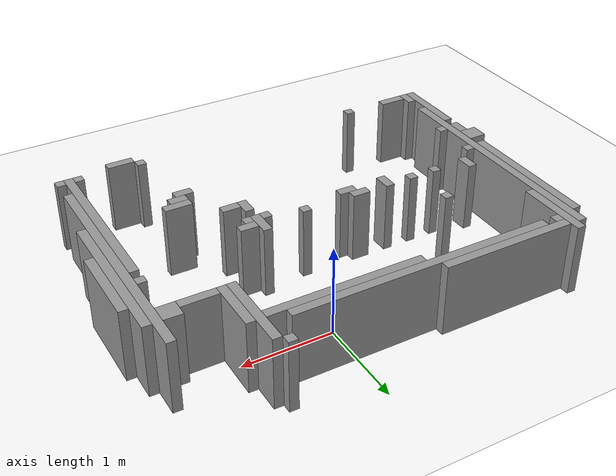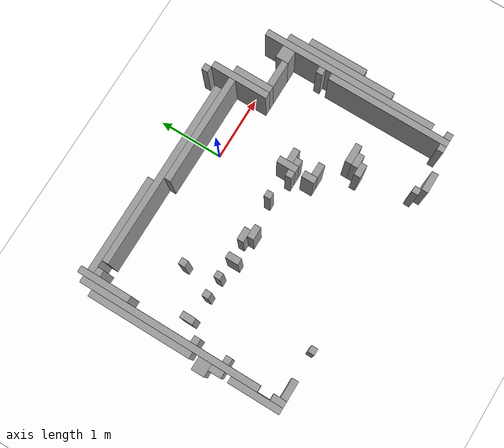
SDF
<?xml version="1.0"?>
<sdf version="1.6">
  <model name="map_walls">
    <static>true</static>
    <link name="walls">
      <collision name="collision_0">
        <pose>0.8400 0.7000 0.4000 0 0 0</pose>
        <geometry>
          <box><size>0.1000 0.1000 0.8</size></box>
        </geometry>
      </collision>
      <collision name="collision_1">
        <pose>-2.4600 0.2500 0.4000 0 0 0</pose>
        <geometry>
          <box><size>0.1000 0.8000 0.8</size></box>
        </geometry>
      </collision>
      <collision name="collision_2">
        <pose>0.9400 0.2000 0.4000 0 0 0</pose>
        <geometry>
          <box><size>0.1000 0.9000 0.8</size></box>
        </geometry>
      </collision>
      <collision name="collision_3">
        <pose>-2.5600 -0.8500 0.4000 0 0 0</pose>
        <geometry>
          <box><size>0.1000 2.8000 0.8</size></box>
        </geometry>
      </collision>
      <collision name="collision_4">
        <pose>-1.6600 0.5000 0.4000 0 0 0</pose>
        <geometry>
          <box><size>1.5000 0.1000 0.8</size></box>
        </geometry>
      </collision>
      <collision name="collision_5">
        <pose>-2.3600 0.4000 0.4000 0 0 0</pose>
        <geometry>
          <box><size>0.1000 0.1000 0.8</size></box>
        </geometry>
      </collision>
      <collision name="collision_6">
        <pose>-0.7600 0.4000 0.4000 0 0 0</pose>
        <geometry>
          <box><size>2.9000 0.1000 0.8</size></box>
        </geometry>
      </collision>
      <collision name="collision_7">
        <pose>-2.6600 -0.4500 0.4000 0 0 0</pose>
        <geometry>
          <box><size>0.1000 1.6000 0.8</size></box>
        </geometry>
      </collision>
      <collision name="collision_8">
        <pose>0.0400 0.3000 0.4000 0 0 0</pose>
        <geometry>
          <box><size>1.7000 0.1000 0.8</size></box>
        </geometry>
      </collision>
      <collision name="collision_9">
        <pose>1.0400 0.0500 0.4000 0 0 0</pose>
        <geometry>
          <box><size>0.1000 0.6000 0.8</size></box>
        </geometry>
      </collision>
      <collision name="collision_10">
        <pose>1.7400 -1.1000 0.4000 0 0 0</pose>
        <geometry>
          <box><size>0.1000 2.7000 0.8</size></box>
        </geometry>
      </collision>
      <collision name="collision_11">
        <pose>1.5900 -0.1500 0.4000 0 0 0</pose>
        <geometry>
          <box><size>0.2000 0.2000 0.8</size></box>
        </geometry>
      </collision>
      <collision name="collision_12">
        <pose>1.8400 -0.9000 0.4000 0 0 0</pose>
        <geometry>
          <box><size>0.1000 1.7000 0.8</size></box>
        </geometry>
      </collision>
      <collision name="collision_13">
        <pose>1.2900 -0.2000 0.4000 0 0 0</pose>
        <geometry>
          <box><size>0.4000 0.1000 0.8</size></box>
        </geometry>
      </collision>
      <collision name="collision_14">
        <pose>1.9400 -0.8000 0.4000 0 0 0</pose>
        <geometry>
          <box><size>0.1000 0.9000 0.8</size></box>
        </geometry>
      </collision>
      <collision name="collision_15">
        <pose>-1.6600 -0.5000 0.4000 0 0 0</pose>
        <geometry>
          <box><size>0.1000 0.1000 0.8</size></box>
        </geometry>
      </collision>
      <collision name="collision_16">
        <pose>1.6400 -0.7000 0.4000 0 0 0</pose>
        <geometry>
          <box><size>0.1000 0.1000 0.8</size></box>
        </geometry>
      </collision>
      <collision name="collision_17">
        <pose>-2.2600 -0.9500 0.4000 0 0 0</pose>
        <geometry>
          <box><size>0.1000 0.2000 0.8</size></box>
        </geometry>
      </collision>
      <collision name="collision_18">
        <pose>0.2400 -1.0000 0.4000 0 0 0</pose>
        <geometry>
          <box><size>0.1000 0.3000 0.8</size></box>
        </geometry>
      </collision>
      <collision name="collision_19">
        <pose>1.6400 -1.8000 0.4000 0 0 0</pose>
        <geometry>
          <box><size>0.1000 1.9000 0.8</size></box>
        </geometry>
      </collision>
      <collision name="collision_20">
        <pose>-1.8600 -1.0000 0.4000 0 0 0</pose>
        <geometry>
          <box><size>0.1000 0.1000 0.8</size></box>
        </geometry>
      </collision>
      <collision name="collision_21">
        <pose>-1.5600 -1.0000 0.4000 0 0 0</pose>
        <geometry>
          <box><size>0.1000 0.1000 0.8</size></box>
        </geometry>
      </collision>
      <collision name="collision_22">
        <pose>-1.2600 -1.0500 0.4000 0 0 0</pose>
        <geometry>
          <box><size>0.1000 0.2000 0.8</size></box>
        </geometry>
      </collision>
      <collision name="collision_23">
        <pose>-0.9100 -1.0000 0.4000 0 0 0</pose>
        <geometry>
          <box><size>0.2000 0.1000 0.8</size></box>
        </geometry>
      </collision>
      <collision name="collision_24">
        <pose>-0.2600 -1.0000 0.4000 0 0 0</pose>
        <geometry>
          <box><size>0.1000 0.1000 0.8</size></box>
        </geometry>
      </collision>
      <collision name="collision_25">
        <pose>0.3900 -1.0000 0.4000 0 0 0</pose>
        <geometry>
          <box><size>0.2000 0.1000 0.8</size></box>
        </geometry>
      </collision>
      <collision name="collision_26">
        <pose>-0.8100 -1.1000 0.4000 0 0 0</pose>
        <geometry>
          <box><size>0.2000 0.1000 0.8</size></box>
        </geometry>
      </collision>
      <collision name="collision_27">
        <pose>0.1400 -1.1000 0.4000 0 0 0</pose>
        <geometry>
          <box><size>0.1000 0.1000 0.8</size></box>
        </geometry>
      </collision>
      <collision name="collision_28">
        <pose>0.3400 -1.1000 0.4000 0 0 0</pose>
        <geometry>
          <box><size>0.1000 0.1000 0.8</size></box>
        </geometry>
      </collision>
      <collision name="collision_29">
        <pose>-2.4600 -1.2000 0.4000 0 0 0</pose>
        <geometry>
          <box><size>0.1000 0.1000 0.8</size></box>
        </geometry>
      </collision>
      <collision name="collision_30">
        <pose>0.2400 -1.3500 0.4000 0 0 0</pose>
        <geometry>
          <box><size>0.1000 0.2000 0.8</size></box>
        </geometry>
      </collision>
      <collision name="collision_31">
        <pose>-2.7100 -1.4500 0.4000 0 0 0</pose>
        <geometry>
          <box><size>0.2000 0.2000 0.8</size></box>
        </geometry>
      </collision>
      <collision name="collision_32">
        <pose>0.3900 -1.4000 0.4000 0 0 0</pose>
        <geometry>
          <box><size>0.2000 0.1000 0.8</size></box>
        </geometry>
      </collision>
      <collision name="collision_33">
        <pose>-2.6600 -1.6500 0.4000 0 0 0</pose>
        <geometry>
          <box><size>0.1000 0.2000 0.8</size></box>
        </geometry>
      </collision>
      <collision name="collision_34">
        <pose>-2.4600 -1.7000 0.4000 0 0 0</pose>
        <geometry>
          <box><size>0.1000 0.1000 0.8</size></box>
        </geometry>
      </collision>
      <collision name="collision_35">
        <pose>0.8400 -1.7000 0.4000 0 0 0</pose>
        <geometry>
          <box><size>0.3000 0.1000 0.8</size></box>
        </geometry>
      </collision>
      <collision name="collision_36">
        <pose>0.7900 -1.8000 0.4000 0 0 0</pose>
        <geometry>
          <box><size>0.2000 0.1000 0.8</size></box>
        </geometry>
      </collision>
      <collision name="collision_37">
        <pose>-2.6600 -2.2500 0.4000 0 0 0</pose>
        <geometry>
          <box><size>0.1000 0.8000 0.8</size></box>
        </geometry>
      </collision>
      <collision name="collision_38">
        <pose>0.6900 -1.9000 0.4000 0 0 0</pose>
        <geometry>
          <box><size>0.2000 0.1000 0.8</size></box>
        </geometry>
      </collision>
      <collision name="collision_39">
        <pose>-2.5600 -2.5500 0.4000 0 0 0</pose>
        <geometry>
          <box><size>0.1000 0.2000 0.8</size></box>
        </geometry>
      </collision>
      <collision name="collision_40">
        <pose>-2.3600 -2.6000 0.4000 0 0 0</pose>
        <geometry>
          <box><size>0.3000 0.1000 0.8</size></box>
        </geometry>
      </collision>
      <collision name="collision_41">
        <pose>-1.7600 -2.6000 0.4000 0 0 0</pose>
        <geometry>
          <box><size>0.1000 0.1000 0.8</size></box>
        </geometry>
      </collision>
      <collision name="collision_42">
        <pose>0.8400 -2.7000 0.4000 0 0 0</pose>
        <geometry>
          <box><size>0.1000 0.1000 0.8</size></box>
        </geometry>
      </collision>
      <collision name="collision_43">
        <pose>1.5400 -2.7000 0.4000 0 0 0</pose>
        <geometry>
          <box><size>0.1000 0.1000 0.8</size></box>
        </geometry>
      </collision>
      <collision name="collision_44">
        <pose>1.7400 -2.7000 0.4000 0 0 0</pose>
        <geometry>
          <box><size>0.1000 0.1000 0.8</size></box>
        </geometry>
      </collision>
      <collision name="collision_45">
        <pose>1.0400 -2.8000 0.4000 0 0 0</pose>
        <geometry>
          <box><size>0.3000 0.1000 0.8</size></box>
        </geometry>
      </collision>
      <visual name="visual_0">
        <pose>0.8400 0.7000 0.4000 0 0 0</pose>
        <geometry>
          <box><size>0.1000 0.1000 0.8</size></box>
        </geometry>
        <material>
          <ambient>0.5 0.5 0.5 1</ambient>
          <diffuse>0.6 0.6 0.6 1</diffuse>
        </material>
      </visual>
      <visual name="visual_1">
        <pose>-2.4600 0.2500 0.4000 0 0 0</pose>
        <geometry>
          <box><size>0.1000 0.8000 0.8</size></box>
        </geometry>
        <material>
          <ambient>0.5 0.5 0.5 1</ambient>
          <diffuse>0.6 0.6 0.6 1</diffuse>
        </material>
      </visual>
      <visual name="visual_2">
        <pose>0.9400 0.2000 0.4000 0 0 0</pose>
        <geometry>
          <box><size>0.1000 0.9000 0.8</size></box>
        </geometry>
        <material>
          <ambient>0.5 0.5 0.5 1</ambient>
          <diffuse>0.6 0.6 0.6 1</diffuse>
        </material>
      </visual>
      <visual name="visual_3">
        <pose>-2.5600 -0.8500 0.4000 0 0 0</pose>
        <geometry>
          <box><size>0.1000 2.8000 0.8</size></box>
        </geometry>
        <material>
          <ambient>0.5 0.5 0.5 1</ambient>
          <diffuse>0.6 0.6 0.6 1</diffuse>
        </material>
      </visual>
      <visual name="visual_4">
        <pose>-1.6600 0.5000 0.4000 0 0 0</pose>
        <geometry>
          <box><size>1.5000 0.1000 0.8</size></box>
        </geometry>
        <material>
          <ambient>0.5 0.5 0.5 1</ambient>
          <diffuse>0.6 0.6 0.6 1</diffuse>
        </material>
      </visual>
      <visual name="visual_5">
        <pose>-2.3600 0.4000 0.4000 0 0 0</pose>
        <geometry>
          <box><size>0.1000 0.1000 0.8</size></box>
        </geometry>
        <material>
          <ambient>0.5 0.5 0.5 1</ambient>
          <diffuse>0.6 0.6 0.6 1</diffuse>
        </material>
      </visual>
      <visual name="visual_6">
        <pose>-0.7600 0.4000 0.4000 0 0 0</pose>
        <geometry>
          <box><size>2.9000 0.1000 0.8</size></box>
        </geometry>
        <material>
          <ambient>0.5 0.5 0.5 1</ambient>
          <diffuse>0.6 0.6 0.6 1</diffuse>
        </material>
      </visual>
      <visual name="visual_7">
        <pose>-2.6600 -0.4500 0.4000 0 0 0</pose>
        <geometry>
          <box><size>0.1000 1.6000 0.8</size></box>
        </geometry>
        <material>
          <ambient>0.5 0.5 0.5 1</ambient>
          <diffuse>0.6 0.6 0.6 1</diffuse>
        </material>
      </visual>
      <visual name="visual_8">
        <pose>0.0400 0.3000 0.4000 0 0 0</pose>
        <geometry>
          <box><size>1.7000 0.1000 0.8</size></box>
        </geometry>
        <material>
          <ambient>0.5 0.5 0.5 1</ambient>
          <diffuse>0.6 0.6 0.6 1</diffuse>
        </material>
      </visual>
      <visual name="visual_9">
        <pose>1.0400 0.0500 0.4000 0 0 0</pose>
        <geometry>
          <box><size>0.1000 0.6000 0.8</size></box>
        </geometry>
        <material>
          <ambient>0.5 0.5 0.5 1</ambient>
          <diffuse>0.6 0.6 0.6 1</diffuse>
        </material>
      </visual>
      <visual name="visual_10">
        <pose>1.7400 -1.1000 0.4000 0 0 0</pose>
        <geometry>
          <box><size>0.1000 2.7000 0.8</size></box>
        </geometry>
        <material>
          <ambient>0.5 0.5 0.5 1</ambient>
          <diffuse>0.6 0.6 0.6 1</diffuse>
        </material>
      </visual>
      <visual name="visual_11">
        <pose>1.5900 -0.1500 0.4000 0 0 0</pose>
        <geometry>
          <box><size>0.2000 0.2000 0.8</size></box>
        </geometry>
        <material>
          <ambient>0.5 0.5 0.5 1</ambient>
          <diffuse>0.6 0.6 0.6 1</diffuse>
        </material>
      </visual>
      <visual name="visual_12">
        <pose>1.8400 -0.9000 0.4000 0 0 0</pose>
        <geometry>
          <box><size>0.1000 1.7000 0.8</size></box>
        </geometry>
        <material>
          <ambient>0.5 0.5 0.5 1</ambient>
          <diffuse>0.6 0.6 0.6 1</diffuse>
        </material>
      </visual>
      <visual name="visual_13">
        <pose>1.2900 -0.2000 0.4000 0 0 0</pose>
        <geometry>
          <box><size>0.4000 0.1000 0.8</size></box>
        </geometry>
        <material>
          <ambient>0.5 0.5 0.5 1</ambient>
          <diffuse>0.6 0.6 0.6 1</diffuse>
        </material>
      </visual>
      <visual name="visual_14">
        <pose>1.9400 -0.8000 0.4000 0 0 0</pose>
        <geometry>
          <box><size>0.1000 0.9000 0.8</size></box>
        </geometry>
        <material>
          <ambient>0.5 0.5 0.5 1</ambient>
          <diffuse>0.6 0.6 0.6 1</diffuse>
        </material>
      </visual>
      <visual name="visual_15">
        <pose>-1.6600 -0.5000 0.4000 0 0 0</pose>
        <geometry>
          <box><size>0.1000 0.1000 0.8</size></box>
        </geometry>
        <material>
          <ambient>0.5 0.5 0.5 1</ambient>
          <diffuse>0.6 0.6 0.6 1</diffuse>
        </material>
      </visual>
      <visual name="visual_16">
        <pose>1.6400 -0.7000 0.4000 0 0 0</pose>
        <geometry>
          <box><size>0.1000 0.1000 0.8</size></box>
        </geometry>
        <material>
          <ambient>0.5 0.5 0.5 1</ambient>
          <diffuse>0.6 0.6 0.6 1</diffuse>
        </material>
      </visual>
      <visual name="visual_17">
        <pose>-2.2600 -0.9500 0.4000 0 0 0</pose>
        <geometry>
          <box><size>0.1000 0.2000 0.8</size></box>
        </geometry>
        <material>
          <ambient>0.5 0.5 0.5 1</ambient>
          <diffuse>0.6 0.6 0.6 1</diffuse>
        </material>
      </visual>
      <visual name="visual_18">
        <pose>0.2400 -1.0000 0.4000 0 0 0</pose>
        <geometry>
          <box><size>0.1000 0.3000 0.8</size></box>
        </geometry>
        <material>
          <ambient>0.5 0.5 0.5 1</ambient>
          <diffuse>0.6 0.6 0.6 1</diffuse>
        </material>
      </visual>
      <visual name="visual_19">
        <pose>1.6400 -1.8000 0.4000 0 0 0</pose>
        <geometry>
          <box><size>0.1000 1.9000 0.8</size></box>
        </geometry>
        <material>
          <ambient>0.5 0.5 0.5 1</ambient>
          <diffuse>0.6 0.6 0.6 1</diffuse>
        </material>
      </visual>
      <visual name="visual_20">
        <pose>-1.8600 -1.0000 0.4000 0 0 0</pose>
        <geometry>
          <box><size>0.1000 0.1000 0.8</size></box>
        </geometry>
        <material>
          <ambient>0.5 0.5 0.5 1</ambient>
          <diffuse>0.6 0.6 0.6 1</diffuse>
        </material>
      </visual>
      <visual name="visual_21">
        <pose>-1.5600 -1.0000 0.4000 0 0 0</pose>
        <geometry>
          <box><size>0.1000 0.1000 0.8</size></box>
        </geometry>
        <material>
          <ambient>0.5 0.5 0.5 1</ambient>
          <diffuse>0.6 0.6 0.6 1</diffuse>
        </material>
      </visual>
      <visual name="visual_22">
        <pose>-1.2600 -1.0500 0.4000 0 0 0</pose>
        <geometry>
          <box><size>0.1000 0.2000 0.8</size></box>
        </geometry>
        <material>
          <ambient>0.5 0.5 0.5 1</ambient>
          <diffuse>0.6 0.6 0.6 1</diffuse>
        </material>
      </visual>
      <visual name="visual_23">
        <pose>-0.9100 -1.0000 0.4000 0 0 0</pose>
        <geometry>
          <box><size>0.2000 0.1000 0.8</size></box>
        </geometry>
        <material>
          <ambient>0.5 0.5 0.5 1</ambient>
          <diffuse>0.6 0.6 0.6 1</diffuse>
        </material>
      </visual>
      <visual name="visual_24">
        <pose>-0.2600 -1.0000 0.4000 0 0 0</pose>
        <geometry>
          <box><size>0.1000 0.1000 0.8</size></box>
        </geometry>
        <material>
          <ambient>0.5 0.5 0.5 1</ambient>
          <diffuse>0.6 0.6 0.6 1</diffuse>
        </material>
      </visual>
      <visual name="visual_25">
        <pose>0.3900 -1.0000 0.4000 0 0 0</pose>
        <geometry>
          <box><size>0.2000 0.1000 0.8</size></box>
        </geometry>
        <material>
          <ambient>0.5 0.5 0.5 1</ambient>
          <diffuse>0.6 0.6 0.6 1</diffuse>
        </material>
      </visual>
      <visual name="visual_26">
        <pose>-0.8100 -1.1000 0.4000 0 0 0</pose>
        <geometry>
          <box><size>0.2000 0.1000 0.8</size></box>
        </geometry>
        <material>
          <ambient>0.5 0.5 0.5 1</ambient>
          <diffuse>0.6 0.6 0.6 1</diffuse>
        </material>
      </visual>
      <visual name="visual_27">
        <pose>0.1400 -1.1000 0.4000 0 0 0</pose>
        <geometry>
          <box><size>0.1000 0.1000 0.8</size></box>
        </geometry>
        <material>
          <ambient>0.5 0.5 0.5 1</ambient>
          <diffuse>0.6 0.6 0.6 1</diffuse>
        </material>
      </visual>
      <visual name="visual_28">
        <pose>0.3400 -1.1000 0.4000 0 0 0</pose>
        <geometry>
          <box><size>0.1000 0.1000 0.8</size></box>
        </geometry>
        <material>
          <ambient>0.5 0.5 0.5 1</ambient>
          <diffuse>0.6 0.6 0.6 1</diffuse>
        </material>
      </visual>
      <visual name="visual_29">
        <pose>-2.4600 -1.2000 0.4000 0 0 0</pose>
        <geometry>
          <box><size>0.1000 0.1000 0.8</size></box>
        </geometry>
        <material>
          <ambient>0.5 0.5 0.5 1</ambient>
          <diffuse>0.6 0.6 0.6 1</diffuse>
        </material>
      </visual>
      <visual name="visual_30">
        <pose>0.2400 -1.3500 0.4000 0 0 0</pose>
        <geometry>
          <box><size>0.1000 0.2000 0.8</size></box>
        </geometry>
        <material>
          <ambient>0.5 0.5 0.5 1</ambient>
          <diffuse>0.6 0.6 0.6 1</diffuse>
        </material>
      </visual>
      <visual name="visual_31">
        <pose>-2.7100 -1.4500 0.4000 0 0 0</pose>
        <geometry>
          <box><size>0.2000 0.2000 0.8</size></box>
        </geometry>
        <material>
          <ambient>0.5 0.5 0.5 1</ambient>
          <diffuse>0.6 0.6 0.6 1</diffuse>
        </material>
      </visual>
      <visual name="visual_32">
        <pose>0.3900 -1.4000 0.4000 0 0 0</pose>
        <geometry>
          <box><size>0.2000 0.1000 0.8</size></box>
        </geometry>
        <material>
          <ambient>0.5 0.5 0.5 1</ambient>
          <diffuse>0.6 0.6 0.6 1</diffuse>
        </material>
      </visual>
      <visual name="visual_33">
        <pose>-2.6600 -1.6500 0.4000 0 0 0</pose>
        <geometry>
          <box><size>0.1000 0.2000 0.8</size></box>
        </geometry>
        <material>
          <ambient>0.5 0.5 0.5 1</ambient>
          <diffuse>0.6 0.6 0.6 1</diffuse>
        </material>
      </visual>
      <visual name="visual_34">
        <pose>-2.4600 -1.7000 0.4000 0 0 0</pose>
        <geometry>
          <box><size>0.1000 0.1000 0.8</size></box>
        </geometry>
        <material>
          <ambient>0.5 0.5 0.5 1</ambient>
          <diffuse>0.6 0.6 0.6 1</diffuse>
        </material>
      </visual>
      <visual name="visual_35">
        <pose>0.8400 -1.7000 0.4000 0 0 0</pose>
        <geometry>
          <box><size>0.3000 0.1000 0.8</size></box>
        </geometry>
        <material>
          <ambient>0.5 0.5 0.5 1</ambient>
          <diffuse>0.6 0.6 0.6 1</diffuse>
        </material>
      </visual>
      <visual name="visual_36">
        <pose>0.7900 -1.8000 0.4000 0 0 0</pose>
        <geometry>
          <box><size>0.2000 0.1000 0.8</size></box>
        </geometry>
        <material>
          <ambient>0.5 0.5 0.5 1</ambient>
          <diffuse>0.6 0.6 0.6 1</diffuse>
        </material>
      </visual>
      <visual name="visual_37">
        <pose>-2.6600 -2.2500 0.4000 0 0 0</pose>
        <geometry>
          <box><size>0.1000 0.8000 0.8</size></box>
        </geometry>
        <material>
          <ambient>0.5 0.5 0.5 1</ambient>
          <diffuse>0.6 0.6 0.6 1</diffuse>
        </material>
      </visual>
      <visual name="visual_38">
        <pose>0.6900 -1.9000 0.4000 0 0 0</pose>
        <geometry>
          <box><size>0.2000 0.1000 0.8</size></box>
        </geometry>
        <material>
          <ambient>0.5 0.5 0.5 1</ambient>
          <diffuse>0.6 0.6 0.6 1</diffuse>
        </material>
      </visual>
      <visual name="visual_39">
        <pose>-2.5600 -2.5500 0.4000 0 0 0</pose>
        <geometry>
          <box><size>0.1000 0.2000 0.8</size></box>
        </geometry>
        <material>
          <ambient>0.5 0.5 0.5 1</ambient>
          <diffuse>0.6 0.6 0.6 1</diffuse>
        </material>
      </visual>
      <visual name="visual_40">
        <pose>-2.3600 -2.6000 0.4000 0 0 0</pose>
        <geometry>
          <box><size>0.3000 0.1000 0.8</size></box>
        </geometry>
        <material>
          <ambient>0.5 0.5 0.5 1</ambient>
          <diffuse>0.6 0.6 0.6 1</diffuse>
        </material>
      </visual>
      <visual name="visual_41">
        <pose>-1.7600 -2.6000 0.4000 0 0 0</pose>
        <geometry>
          <box><size>0.1000 0.1000 0.8</size></box>
        </geometry>
        <material>
          <ambient>0.5 0.5 0.5 1</ambient>
          <diffuse>0.6 0.6 0.6 1</diffuse>
        </material>
      </visual>
      <visual name="visual_42">
        <pose>0.8400 -2.7000 0.4000 0 0 0</pose>
        <geometry>
          <box><size>0.1000 0.1000 0.8</size></box>
        </geometry>
        <material>
          <ambient>0.5 0.5 0.5 1</ambient>
          <diffuse>0.6 0.6 0.6 1</diffuse>
        </material>
      </visual>
      <visual name="visual_43">
        <pose>1.5400 -2.7000 0.4000 0 0 0</pose>
        <geometry>
          <box><size>0.1000 0.1000 0.8</size></box>
        </geometry>
        <material>
          <ambient>0.5 0.5 0.5 1</ambient>
          <diffuse>0.6 0.6 0.6 1</diffuse>
        </material>
      </visual>
      <visual name="visual_44">
        <pose>1.7400 -2.7000 0.4000 0 0 0</pose>
        <geometry>
          <box><size>0.1000 0.1000 0.8</size></box>
        </geometry>
        <material>
          <ambient>0.5 0.5 0.5 1</ambient>
          <diffuse>0.6 0.6 0.6 1</diffuse>
        </material>
      </visual>
      <visual name="visual_45">
        <pose>1.0400 -2.8000 0.4000 0 0 0</pose>
        <geometry>
          <box><size>0.3000 0.1000 0.8</size></box>
        </geometry>
        <material>
          <ambient>0.5 0.5 0.5 1</ambient>
          <diffuse>0.6 0.6 0.6 1</diffuse>
        </material>
      </visual>
      <visual name="map_floor">
        <pose>-0.6100 -4.1750 0.001 0 0 0</pose>
        <geometry>
          <plane><normal>0 0 1</normal><size>12.2000 12.2500</size></plane>
        </geometry>
        <material>
          <ambient>1 1 1 1</ambient>
          <diffuse>1 1 1 1</diffuse>
          <script>
            <uri>model://map_walls/materials</uri>
            <name>MapFloor/Image</name>
          </script>
        </material>
      </visual>
    </link>
  </model>
</sdf>
